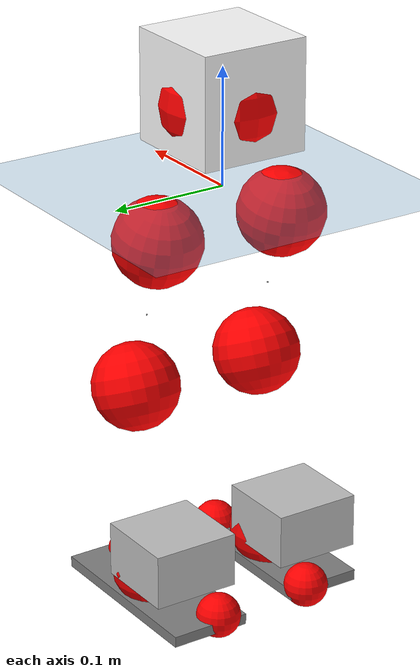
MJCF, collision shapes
<mujoco model="pi_12dof_release_v1">
  <compiler angle="radian" assetdir="assets" balanceinertia="true" inertiafromgeom="false"/>

  <option timestep="0.005" density="1.2" viscosity="2e-05"/>

  <size nkey="1"/>

  <visual>
    <quality shadowsize="8192"/>
    <map shadowclip="0.5"/>
  </visual>

  <default>
    <default class="/">
      <joint armature="0.01" damping="0.01" frictionloss="0.01"/>
      <geom contype="0" conaffinity="0" group="1" solref="-1000 -80"/>
      <site size="0.01 0.005 0.005" group="5"/>
      <general forcelimited="true" biastype="affine" gainprm="20" biasprm="0 -20 -0.5"/>
      <default class="foot">
        <geom size="0.0845 0.036 0.005" type="box" condim="6" group="4" priority="1" friction="0.9 0.2 0.2" solimp="0.015 1 0.005"/>
      </default>
      <default class="reward_collision_sphere">
        <geom group="5" rgba="1 0 0 1"/>
      </default>
    </default>
  </default>

  <asset>
    <texture type="skybox" colorspace="auto" name="//unnamed_texture_0" builtin="gradient" rgb1="0.95 0.95 0.95" rgb2="0.95 0.95 0.95" width="100" height="600"/>
    <texture type="2d" colorspace="auto" name="texplane" builtin="checker" rgb1="0.345 0.575 0.748" rgb2="0.345 0.575 0.748" markrgb="1 1 1" width="512" height="512"/>
    <material name="MatPlane" class="/" texture="texplane" texuniform="true" texrepeat="2 2" specular="0.9"/>
    <mesh name="baselink_1" class="/" file="baselink_1.STL"/>
    <mesh name="r_hip_pitch_link" class="/" file="r_hip_pitch_link.STL"/>
    <mesh name="r_hip_roll_link" class="/" file="r_hip_roll_link.STL"/>
    <mesh name="r_thigh_link" class="/" file="r_thigh_link.STL"/>
    <mesh name="r_calf_link" class="/" file="r_calf_link.STL"/>
    <mesh name="r_ankle_pitch_link" class="/" file="r_ankle_pitch_link.STL"/>
    <mesh name="r_ankle_roll_link" class="/" file="r_ankle_roll_link.STL"/>
    <mesh name="l_hip_pitch_link" class="/" file="l_hip_pitch_link.STL"/>
    <mesh name="l_hip_roll_link" class="/" file="l_hip_roll_link.STL"/>
    <mesh name="l_thigh_link" class="/" file="l_thigh_link.STL"/>
    <mesh name="l_calf_link" class="/" file="l_calf_link.STL"/>
    <mesh name="l_ankle_pitch_link" class="/" file="l_ankle_pitch_link.STL"/>
    <mesh name="l_ankle_roll_link" class="/" file="l_ankle_roll_link.STL"/>
  </asset>

  <worldbody>
    <geom name="floor" class="/" size="100 100 0.125" type="plane" group="0" material="MatPlane"/>
    <light name="toplight_shadow" class="/" pos="0 0 5" dir="0.0990148 0.0990148 -0.990148" type="directional" ambient="0.04 0.04 0.04" diffuse="0.55 0.55 0.55" specular="0.12 0.12 0.12"/>
    <light name="toplight_fill" class="/" pos="0 0 5" dir="0.0990148 0.0990148 -0.990148" type="directional" castshadow="false" ambient="0.04 0.04 0.04" diffuse="0.3 0.3 0.3" specular="0.08 0.08 0.08"/>
    <body name="trunk" pos="-0.000511673 0.000837546 0.000216033" quat="1 1.11319e-05 0.000168704 0.000155929">
      <inertial pos="0.00152474 -0.000643732 0.0409836" quat="0.69494 0.0102132 0.00986035 0.718927" mass="1.76996" diaginertia="0.0102847 0.00252476 0.00454868"/>
      <joint name="//unnamed_joint_0" type="free"/>
      <geom name="//unnamed_geom_1" class="/" type="mesh" density="0" rgba="1 1 1 1" mesh="baselink_1"/>
      <geom name="//unnamed_geom_2" class="/" size="0.0467751 0.0467751 0.0467751" pos="0 0 0.0814941" type="box" rgba="1 1 1 1"/>
      <geom name="//unnamed_geom_3" class="reward_collision_sphere" size="0.0514526" pos="0 0 0.0713074"/>
      <site name="imu" class="/" pos="0.000185301 -0.000307081 -0.00200313" size="0.00935502"/>
      <camera name="track" class="/" pos="0 -1.55257 0" quat="0.707107 0.707107 0 0" mode="trackcom"/>
      <camera name="ego_camera" class="/" pos="0.0758658 0 0.183362" quat="-0.5 -0.5 0.5 0.5"/>
      <body name="r_hip_pitch_link" pos="0.000598346 -0.0164737 -0.0342318" quat="0.992208 3.79767e-05 -0.124595 -7.70527e-05">
        <inertial pos="0.000237725 -0.0427361 0.000674374" quat="-0.0186559 0.705539 -0.0295077 0.707811" mass="0.302121" diaginertia="0.000114348 2.75084e-05 9.00322e-05"/>
        <joint name="r_hip_pitch_joint" class="/" pos="0 0 0" axis="0.00214201 -0.999978 -0.00630121" range="-1.7497 1.25362" armature="0.00933344" damping="0.0134183" frictionloss="0.00897712"/>
        <geom name="//unnamed_geom_4" class="/" type="mesh" density="0" rgba="0.75294 0.75294 0.75294 1" mesh="r_hip_pitch_link"/>
        <geom name="//unnamed_geom_5" class="/" size="0.000467751 0.000467751 0.000467751" type="box" rgba="0.75294 0.75294 0.75294 1"/>
        <body name="r_hip_roll_link" pos="0.000575227 -0.0424836 -7.47766e-05" quat="1 -3.24247e-06 -1.56238e-06 1.35828e-05">
          <inertial pos="-0.000386868 -0.000380698 -0.0629876" quat="0.704871 -0.0787942 -0.0827985 0.700066" mass="0.316129" diaginertia="0.000354871 7.87949e-05 0.000141157"/>
          <joint name="r_hip_roll_joint" class="/" pos="0 0 0" axis="-1 5.1274e-05 -0.000305745" range="-0.112543 0.483868" armature="0.00928726" damping="0.00822283" frictionloss="0.0093297"/>
          <geom name="//unnamed_geom_6" class="/" type="mesh" density="0" rgba="0.75294 0.75294 0.75294 1" mesh="r_hip_roll_link"/>
          <geom name="//unnamed_geom_7" class="/" size="0.000467751 0.000467751 0.000467751" type="box" rgba="0.75294 0.75294 0.75294 1"/>
          <geom name="//unnamed_geom_8" class="reward_collision_sphere" size="0.0374201"/>
          <body name="r_thigh_link" pos="-0.000140764 0.000994559 -0.0704835" quat="1 -0.00044303 9.49796e-05 -0.00024448">
            <inertial pos="-0.000394615 0.000411382 -0.0477761" quat="0.737422 0.675433 -0.000109019 0.000240824" mass="0.0926506" diaginertia="0.000132026 2.64262e-05 6.4216e-05"/>
            <joint name="r_thigh_joint" class="/" pos="0 0 0" axis="0.0049449 0.000797852 -0.999987" range="-0.302883 0.574624" armature="0.00940016" damping="0.00379063" frictionloss="0.00949283"/>
            <geom name="//unnamed_geom_9" class="/" type="mesh" density="0" rgba="0.75294 0.75294 0.75294 1" mesh="r_thigh_link"/>
            <geom name="//unnamed_geom_10" class="/" size="0.000467751 0.000467751 0.000467751" type="box" rgba="0.75294 0.75294 0.75294 1"/>
            <body name="r_calf_link" pos="-3.07961e-05 -0.00121753 -0.0712553" quat="0.947602 2.12037e-05 0.319454 0.000173305">
              <inertial pos="-0.00099363 -0.000429274 -0.0711912" quat="0.999988 -0.00263753 -0.000579102 0.00405244" mass="0.669424" diaginertia="0.00367763 0.000969965 0.000191603"/>
              <joint name="r_calf_joint" class="/" pos="0 0 0" axis="0.00115525 -0.999999 -0.000444846" range="-1.6461 0.65085" armature="0.00983725" damping="0.000476787" frictionloss="0.00976445"/>
              <geom name="//unnamed_geom_11" class="/" type="mesh" density="0" rgba="0.75294 0.75294 0.75294 1" mesh="r_calf_link"/>
              <geom name="//unnamed_geom_12" class="/" size="0.000467751 0.000467751 0.000467751" type="box" rgba="0.75294 0.75294 0.75294 1"/>
              <geom name="//unnamed_geom_13" class="reward_collision_sphere" size="0.0374201"/>
              <body name="r_ankle_pitch_link" pos="0.000828624 -0.000228895 -0.142928" quat="0.98007 4.41645e-05 -0.198653 0.000289496">
                <inertial pos="0.0056639 0.00188 -0.000561094" quat="0.00268005 0.707472 -0.0021073 0.706734" mass="0.142496" diaginertia="0.000326402 6.2923e-05 0.000132321"/>
                <joint name="r_ankle_pitch_joint" class="/" pos="0 0 0" axis="-8.98038e-06 -0.999984 0.00562188" range="-1.28841 0.489389" armature="0.00914981" damping="0.00807753" frictionloss="0.00976272"/>
                <geom name="//unnamed_geom_14" class="/" type="mesh" density="0" rgba="0.75294 0.75294 0.75294 1" mesh="r_ankle_pitch_link"/>
                <geom name="//unnamed_geom_15" class="/" size="0.0364846 0.0374201 0.0233876" type="box" rgba="0.75294 0.75294 0.75294 1"/>
                <body name="r_ankle_roll_link" pos="0.0763581 0.00194765 -0.000201658" quat="1 -1.16997e-05 6.54789e-05 -4.68051e-05">
                  <inertial pos="-0.0253109 7.46844e-05 -0.0152246" quat="0.559323 0.431191 0.434232 0.559173" mass="0.424792" diaginertia="0.00118907 0.000292148 0.000308426"/>
                  <joint name="r_ankle_roll_joint" class="/" pos="0 0 0" axis="-0.999972 -0.00657385 0.00343487" range="-0.146087 0.15832" armature="0.00959608" damping="0.00849009" frictionloss="0.00945124"/>
                  <geom name="//unnamed_geom_16" class="/" type="mesh" density="0" rgba="0.75294 0.75294 0.75294 1" mesh="r_ankle_roll_link"/>
                  <geom name="//unnamed_geom_17" class="/" type="mesh" rgba="0.75294 0.75294 0.75294 1" mesh="r_ankle_roll_link"/>
                  <geom name="right_foot" class="foot" size="0.0728371 0.0328186 0.00471902" pos="-0.0515887 0 -0.0448218"/>
                  <geom name="//unnamed_geom_19" class="reward_collision_sphere" size="0.0374201" pos="-0.0505772 0 -0.0203735"/>
                  <geom name="//unnamed_geom_20" class="reward_collision_sphere" size="0.01871" pos="0.0151732 0.0155257 -0.0407471"/>
                  <geom name="//unnamed_geom_21" class="reward_collision_sphere" size="0.01871" pos="-0.121385 0.0155257 -0.0407471"/>
                  <site name="right_foot" class="foot" pos="-0.0515887 0 -0.0448218" size="0.00935502"/>
                </body>
              </body>
            </body>
          </body>
        </body>
      </body>
      <body name="l_hip_pitch_link" pos="-0.000496795 0.0180161 -0.0339073" quat="0.99218 -0.000470467 -0.124814 0.000489497">
        <inertial pos="0.00138353 0.0413255 -0.000279535" quat="-0.0384171 0.705533 0.0297509 0.707009" mass="0.32008" diaginertia="0.000135426 2.92634e-05 0.000109532"/>
        <joint name="l_hip_pitch_joint" class="/" pos="0 0 0" axis="0.000176079 1 -0.000124247" stiffness="0.00218637" range="-1.26528 1.75004" armature="0.00905734" damping="0.0064539" frictionloss="0.00917767"/>
        <geom name="//unnamed_geom_22" class="/" type="mesh" density="0" rgba="0.75294 0.75294 0.75294 1" mesh="l_hip_pitch_link"/>
        <geom name="//unnamed_geom_23" class="/" size="0.000467751 0.000467751 0.000467751" type="box" rgba="0.75294 0.75294 0.75294 1"/>
        <body name="l_hip_roll_link" pos="0.000324926 0.0429654 -0.000478181" quat="1 3.21313e-05 -0.000111715 6.7353e-05">
          <inertial pos="-0.00142214 4.33011e-06 -0.0628847" quat="0.699362 -0.074819 -0.0782948 0.706516" mass="0.319263" diaginertia="0.000354338 7.87985e-05 0.000141118"/>
          <joint name="l_hip_roll_joint" class="/" pos="0 0 0" axis="-0.999996 -0.000731166 0.0027686" range="-0.5051 0.12206" armature="0.00900027" damping="0" frictionloss="0.00902723"/>
          <geom name="//unnamed_geom_24" class="/" type="mesh" density="0" rgba="0.75294 0.75294 0.75294 1" mesh="l_hip_roll_link"/>
          <geom name="//unnamed_geom_25" class="/" size="0.000467751 0.000467751 0.000467751" type="box" rgba="0.75294 0.75294 0.75294 1"/>
          <geom name="//unnamed_geom_26" class="reward_collision_sphere" size="0.0374201"/>
          <body name="l_thigh_link" pos="0.000538716 -0.000376238 -0.0713686" quat="1 -2.82601e-05 9.49036e-06 -0.000135959">
            <inertial pos="0.000435491 -0.00143613 -0.0495402" quat="0.675217 0.737619 0.000205196 0.000213115" mass="0.0920925" diaginertia="0.000132623 2.66685e-05 6.37888e-05"/>
            <joint name="l_thigh_joint" class="/" pos="0 0 0" axis="0.00193833 0.000318396 -0.999998" stiffness="0.000447136" range="-0.599116 0.290609" armature="0.00978329" damping="0.00377693" frictionloss="0.00929013"/>
            <geom name="//unnamed_geom_27" class="/" type="mesh" density="0" rgba="0.75294 0.75294 0.75294 1" mesh="l_thigh_link"/>
            <geom name="//unnamed_geom_28" class="/" size="0.000467751 0.000467751 0.000467751" type="box" rgba="0.75294 0.75294 0.75294 1"/>
            <body name="l_calf_link" pos="-0.000422615 0.000455589 -0.0721406" quat="0.947707 -0.000188013 0.319141 0.000236244">
              <inertial pos="0.000273997 0.00158866 -0.0715163" quat="0.999986 0.00328486 0.000125747 0.00424119" mass="0.664697" diaginertia="0.00367946 0.000973101 0.000191675"/>
              <joint name="l_calf_joint" class="/" pos="0 0 0" axis="-0.00136418 0.999998 -0.00120008" stiffness="0.000946986" range="-0.658656 1.65587" armature="0.00905404" damping="0.00837701" frictionloss="0.00963073"/>
              <geom name="//unnamed_geom_29" class="/" type="mesh" density="0" rgba="0.75294 0.75294 0.75294 1" mesh="l_calf_link"/>
              <geom name="//unnamed_geom_30" class="/" size="0.000467751 0.000467751 0.000467751" type="box" rgba="0.75294 0.75294 0.75294 1"/>
              <geom name="//unnamed_geom_31" class="reward_collision_sphere" size="0.0374201"/>
              <body name="l_ankle_pitch_link" pos="0.000284193 0.000869444 -0.14208" quat="0.980058 0.000199129 -0.198709 -5.44021e-05">
                <inertial pos="0.00482062 1.70162e-05 3.71928e-06" quat="-0.00192233 0.706895 0.00185101 0.707313" mass="0.145405" diaginertia="0.000327718 6.26306e-05 0.000131423"/>
                <joint name="l_ankle_pitch_joint" class="/" pos="0 0 0" axis="-0.00164674 0.999998 0.000672064" range="-0.514458 1.30413" armature="0.0093818" damping="0.00719763" frictionloss="0.00916559"/>
                <geom name="//unnamed_geom_32" class="/" type="mesh" density="0" rgba="0.75294 0.75294 0.75294 1" mesh="l_ankle_pitch_link"/>
                <geom name="//unnamed_geom_33" class="/" size="0.0364846 0.0374201 0.0233876" type="box" rgba="0.75294 0.75294 0.75294 1"/>
                <body name="l_ankle_roll_link" pos="0.0754037 0.000497625 0.00019648" quat="1 -0.000193834 -7.98878e-07 4.00069e-07">
                  <inertial pos="-0.0240334 -8.80362e-05 -0.0156003" quat="0.560222 0.431406 0.433876 0.558384" mass="0.425682" diaginertia="0.00117622 0.000291171 0.000304768"/>
                  <joint name="l_ankle_roll_joint" class="/" pos="0 0 0" axis="-0.999999 -0.00155095 0.000566396" range="-0.159565 0.15368" armature="0.00920648" damping="0.0034986" frictionloss="0.00957299"/>
                  <geom name="//unnamed_geom_34" class="/" type="mesh" density="0" rgba="0.75294 0.75294 0.75294 1" mesh="l_ankle_roll_link"/>
                  <geom name="//unnamed_geom_35" class="/" type="mesh" rgba="0.75294 0.75294 0.75294 1" mesh="l_ankle_roll_link"/>
                  <geom name="left_foot" class="foot" size="0.0817421 0.0344574 0.00465616" pos="-0.0515887 0 -0.0448218"/>
                  <geom name="//unnamed_geom_37" class="reward_collision_sphere" size="0.0374201" pos="-0.0505772 0 -0.0203735"/>
                  <geom name="//unnamed_geom_38" class="reward_collision_sphere" size="0.01871" pos="0.0151732 -0.0155257 -0.0407471"/>
                  <geom name="//unnamed_geom_39" class="reward_collision_sphere" size="0.01871" pos="-0.121385 -0.0155257 -0.0407471"/>
                  <site name="left_foot" class="foot" pos="-0.0515887 0 -0.0448218" size="0.00935502"/>
                </body>
              </body>
            </body>
          </body>
        </body>
      </body>
    </body>
  </worldbody>

  <contact>
    <pair class="/" geom1="floor" geom2="right_foot" name="//unnamed_contact_1"/>
    <pair class="/" geom1="floor" geom2="left_foot" name="//unnamed_contact_0"/>
  </contact>

  <actuator>
    <general name="r_hip_pitch_joint" class="/" joint="r_hip_pitch_joint" forcerange="-19.3027 19.3027" gainprm="18.8858" biasprm="0 -18.8858 -0.477739"/>
    <general name="r_hip_roll_joint" class="/" joint="r_hip_roll_joint" forcerange="-19.581 19.581" gainprm="18.8858" biasprm="0 -18.8858 -0.477739"/>
    <general name="r_thigh_joint" class="/" joint="r_thigh_joint" forcerange="-19.7735 19.7735" gainprm="18.8858" biasprm="0 -18.8858 -0.477739"/>
    <general name="r_calf_joint" class="/" joint="r_calf_joint" forcerange="-19.3168 19.3168" gainprm="18.8858" biasprm="0 -18.8858 -0.477739"/>
    <general name="r_ankle_pitch_joint" class="/" joint="r_ankle_pitch_joint" forcerange="-19.9704 19.9704" gainprm="18.8858" biasprm="0 -18.8858 -0.477739"/>
    <general name="r_ankle_roll_joint" class="/" joint="r_ankle_roll_joint" forcerange="-19.2852 19.2852" gainprm="18.8858" biasprm="0 -18.8858 -0.477739"/>
    <general name="l_hip_pitch_joint" class="/" joint="l_hip_pitch_joint" forcerange="-19.7875 19.7875" gainprm="18.8858" biasprm="0 -18.8858 -0.477739"/>
    <general name="l_hip_roll_joint" class="/" joint="l_hip_roll_joint" forcerange="-20.2131 20.2131" gainprm="18.8858" biasprm="0 -18.8858 -0.477739"/>
    <general name="l_thigh_joint" class="/" joint="l_thigh_joint" forcerange="-19.6397 19.6397" gainprm="18.8858" biasprm="0 -18.8858 -0.477739"/>
    <general name="l_calf_joint" class="/" joint="l_calf_joint" forcerange="-20.3068 20.3068" gainprm="18.8858" biasprm="0 -18.8858 -0.477739"/>
    <general name="l_ankle_pitch_joint" class="/" joint="l_ankle_pitch_joint" forcerange="-19.6144 19.6144" gainprm="18.8858" biasprm="0 -18.8858 -0.477739"/>
    <general name="l_ankle_roll_joint" class="/" joint="l_ankle_roll_joint" forcerange="-20.1503 20.1503" gainprm="18.8858" biasprm="0 -18.8858 -0.477739"/>
  </actuator>

  <sensor>
    <gyro site="imu" name="imu_angular_velocity"/>
    <velocimeter site="imu" name="imu_linear_velocity"/>
    <framelinvel objtype="site" objname="left_foot" name="left_foot_global_linear_velocity"/>
    <framelinvel objtype="site" objname="right_foot" name="right_foot_global_linear_velocity"/>
  </sensor>

  <keyframe>
    <key name="home" qpos="0 0 0.291 1 0 0 0 0.4 0 0 -0.8 0.4 0 -0.4 0 0 0.8 -0.4 0"/>
  </keyframe>
</mujoco>
